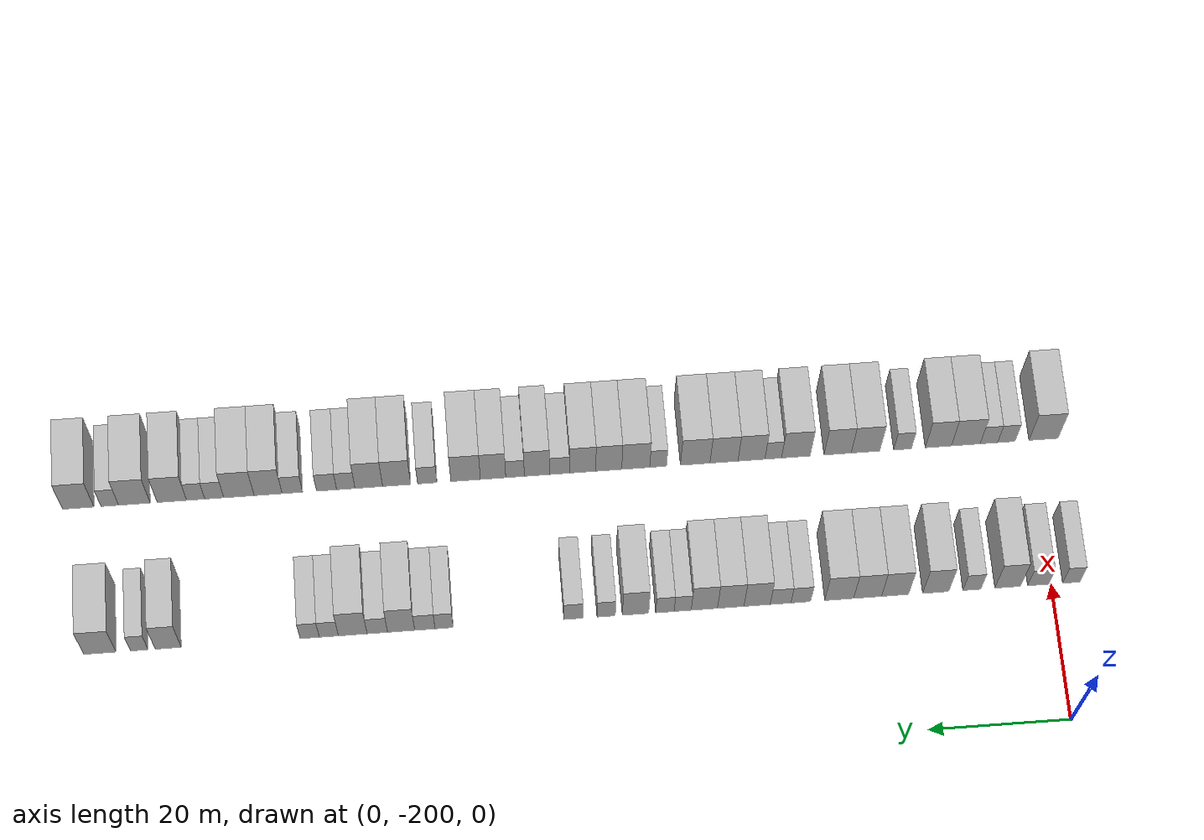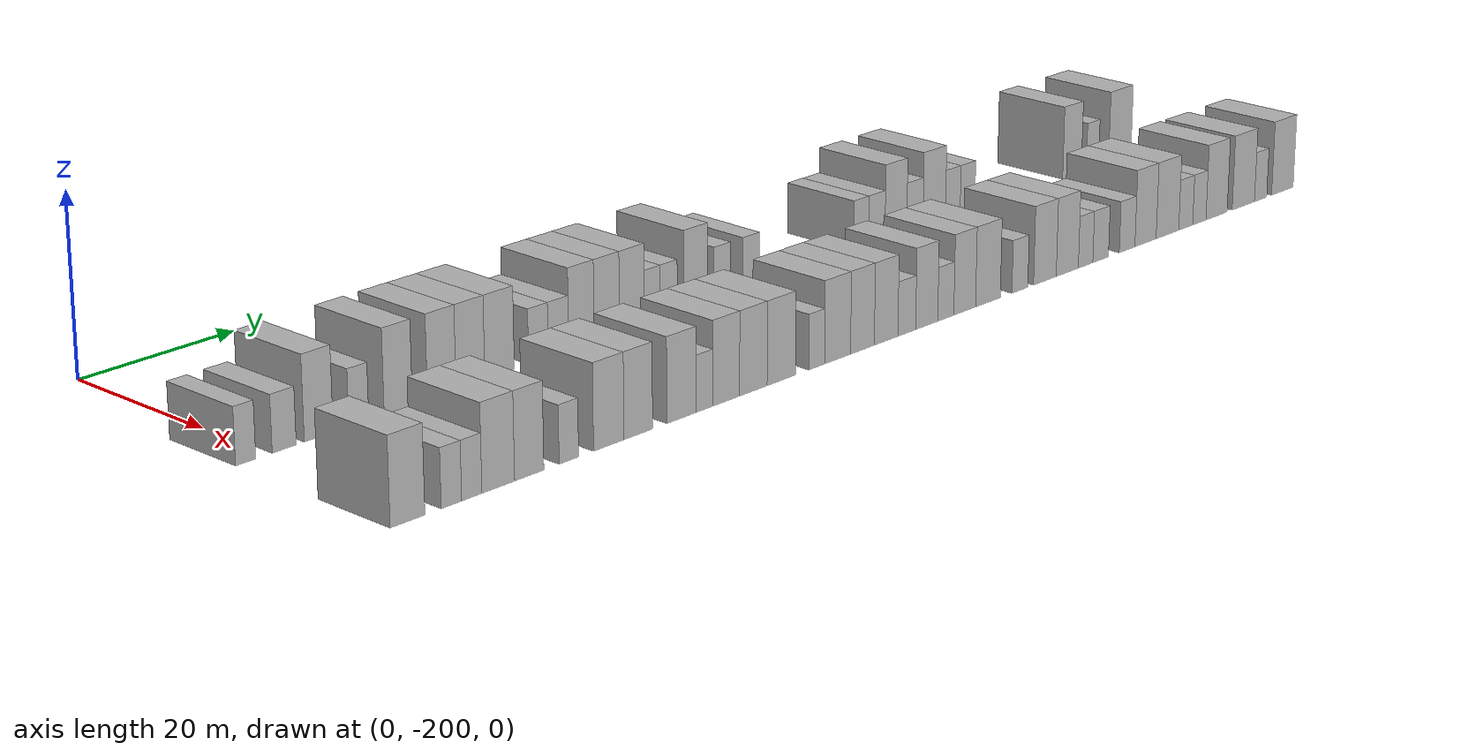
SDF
<sdf version="1.6">
 <world name="default">
  <model name="building_1">
   <static>1</static>
   <pose>25.0000 -202.7742 0 0.000000 0.000000 0.000000</pose>
   <link name="link">
    <pose>0 0 3.00 0 0 0</pose>
    <collision name="collision"><geometry><box><size>10.0000 2.4517 6.0000</size></box></geometry></collision>
    <visual name="visual">
     <cast_shadows>0</cast_shadows>
     <geometry><box><size>10.0000 2.4517 6.0000</size></box></geometry>
     <material>
      <script>
       <uri>model://HANNAS_wall/materials/scripts</uri>
       <uri>model://HANNAS_wall/materials/textures</uri>
       <name>vrc/HANNAS_wall</name>
      </script>
     </material>
    </visual>
   </link>
  </model>
  <model name="building_2">
   <static>1</static>
   <pose>25.0000 -198.0626 0 0.000000 0.000000 0.000000</pose>
   <link name="link">
    <pose>0 0 3.00 0 0 0</pose>
    <collision name="collision"><geometry><box><size>10.0000 2.9713 6.0000</size></box></geometry></collision>
    <visual name="visual">
     <cast_shadows>0</cast_shadows>
     <geometry><box><size>10.0000 2.9713 6.0000</size></box></geometry>
     <material>
      <script>
       <uri>model://HANNAS_wall/materials/scripts</uri>
       <uri>model://HANNAS_wall/materials/textures</uri>
       <name>vrc/HANNAS_wall</name>
      </script>
     </material>
    </visual>
   </link>
  </model>
  <model name="building_3">
   <static>1</static>
   <pose>25.0000 -193.7579 0 0.000000 0.000000 0.000000</pose>
   <link name="link">
    <pose>0 0 4.50 0 0 0</pose>
    <collision name="collision"><geometry><box><size>10.0000 3.6382 9.0000</size></box></geometry></collision>
    <visual name="visual">
     <cast_shadows>0</cast_shadows>
     <geometry><box><size>10.0000 3.6382 9.0000</size></box></geometry>
     <material>
      <script>
       <uri>model://HANNAS_wall/materials/scripts</uri>
       <uri>model://HANNAS_wall/materials/textures</uri>
       <name>vrc/HANNAS_wall</name>
      </script>
     </material>
    </visual>
   </link>
  </model>
  <model name="building_4">
   <static>1</static>
   <pose>25.0000 -188.6675 0 0.000000 0.000000 0.000000</pose>
   <link name="link">
    <pose>0 0 3.00 0 0 0</pose>
    <collision name="collision"><geometry><box><size>10.0000 2.5426 6.0000</size></box></geometry></collision>
    <visual name="visual">
     <cast_shadows>0</cast_shadows>
     <geometry><box><size>10.0000 2.5426 6.0000</size></box></geometry>
     <material>
      <script>
       <uri>model://HANNAS_wall/materials/scripts</uri>
       <uri>model://HANNAS_wall/materials/textures</uri>
       <name>vrc/HANNAS_wall</name>
      </script>
     </material>
    </visual>
   </link>
  </model>
  <model name="building_5">
   <static>1</static>
   <pose>25.0000 -183.5469 0 0.000000 0.000000 0.000000</pose>
   <link name="link">
    <pose>0 0 4.50 0 0 0</pose>
    <collision name="collision"><geometry><box><size>10.0000 3.6987 9.0000</size></box></geometry></collision>
    <visual name="visual">
     <cast_shadows>0</cast_shadows>
     <geometry><box><size>10.0000 3.6987 9.0000</size></box></geometry>
     <material>
      <script>
       <uri>model://HANNAS_wall/materials/scripts</uri>
       <uri>model://HANNAS_wall/materials/textures</uri>
       <name>vrc/HANNAS_wall</name>
      </script>
     </material>
    </visual>
   </link>
  </model>
  <model name="building_6">
   <static>1</static>
   <pose>25.0000 -177.7807 0 0.000000 0.000000 0.000000</pose>
   <link name="link">
    <pose>0 0 4.50 0 0 0</pose>
    <collision name="collision"><geometry><box><size>10.0000 3.8337 9.0000</size></box></geometry></collision>
    <visual name="visual">
     <cast_shadows>0</cast_shadows>
     <geometry><box><size>10.0000 3.8337 9.0000</size></box></geometry>
     <material>
      <script>
       <uri>model://HANNAS_wall/materials/scripts</uri>
       <uri>model://HANNAS_wall/materials/textures</uri>
       <name>vrc/HANNAS_wall</name>
      </script>
     </material>
    </visual>
   </link>
  </model>
  <model name="building_7">
   <static>1</static>
   <pose>25.0000 -173.8962 0 0.000000 0.000000 0.000000</pose>
   <link name="link">
    <pose>0 0 4.50 0 0 0</pose>
    <collision name="collision"><geometry><box><size>10.0000 3.9352 9.0000</size></box></geometry></collision>
    <visual name="visual">
     <cast_shadows>0</cast_shadows>
     <geometry><box><size>10.0000 3.9352 9.0000</size></box></geometry>
     <material>
      <script>
       <uri>model://HANNAS_wall/materials/scripts</uri>
       <uri>model://HANNAS_wall/materials/textures</uri>
       <name>vrc/HANNAS_wall</name>
      </script>
     </material>
    </visual>
   </link>
  </model>
  <model name="building_8">
   <static>1</static>
   <pose>25.0000 -169.8892 0 0.000000 0.000000 0.000000</pose>
   <link name="link">
    <pose>0 0 4.50 0 0 0</pose>
    <collision name="collision"><geometry><box><size>10.0000 4.0788 9.0000</size></box></geometry></collision>
    <visual name="visual">
     <cast_shadows>0</cast_shadows>
     <geometry><box><size>10.0000 4.0788 9.0000</size></box></geometry>
     <material>
      <script>
       <uri>model://HANNAS_wall/materials/scripts</uri>
       <uri>model://HANNAS_wall/materials/textures</uri>
       <name>vrc/HANNAS_wall</name>
      </script>
     </material>
    </visual>
   </link>
  </model>
  <model name="building_9">
   <static>1</static>
   <pose>25.0000 -164.4599 0 0.000000 0.000000 0.000000</pose>
   <link name="link">
    <pose>0 0 3.00 0 0 0</pose>
    <collision name="collision"><geometry><box><size>10.0000 2.7798 6.0000</size></box></geometry></collision>
    <visual name="visual">
     <cast_shadows>0</cast_shadows>
     <geometry><box><size>10.0000 2.7798 6.0000</size></box></geometry>
     <material>
      <script>
       <uri>model://HANNAS_wall/materials/scripts</uri>
       <uri>model://HANNAS_wall/materials/textures</uri>
       <name>vrc/HANNAS_wall</name>
      </script>
     </material>
    </visual>
   </link>
  </model>
  <model name="building_10">
   <static>1</static>
   <pose>25.0000 -161.5999 0 0.000000 0.000000 0.000000</pose>
   <link name="link">
    <pose>0 0 3.00 0 0 0</pose>
    <collision name="collision"><geometry><box><size>10.0000 2.9401 6.0000</size></box></geometry></collision>
    <visual name="visual">
     <cast_shadows>0</cast_shadows>
     <geometry><box><size>10.0000 2.9401 6.0000</size></box></geometry>
     <material>
      <script>
       <uri>model://HANNAS_wall/materials/scripts</uri>
       <uri>model://HANNAS_wall/materials/textures</uri>
       <name>vrc/HANNAS_wall</name>
      </script>
     </material>
    </visual>
   </link>
  </model>
  <model name="building_11">
   <static>1</static>
   <pose>25.0000 -158.2807 0 0.000000 0.000000 0.000000</pose>
   <link name="link">
    <pose>0 0 4.50 0 0 0</pose>
    <collision name="collision"><geometry><box><size>10.0000 3.6983 9.0000</size></box></geometry></collision>
    <visual name="visual">
     <cast_shadows>0</cast_shadows>
     <geometry><box><size>10.0000 3.6983 9.0000</size></box></geometry>
     <material>
      <script>
       <uri>model://HANNAS_wall/materials/scripts</uri>
       <uri>model://HANNAS_wall/materials/textures</uri>
       <name>vrc/HANNAS_wall</name>
      </script>
     </material>
    </visual>
   </link>
  </model>
  <model name="building_12">
   <static>1</static>
   <pose>25.0000 -154.5642 0 0.000000 0.000000 0.000000</pose>
   <link name="link">
    <pose>0 0 4.50 0 0 0</pose>
    <collision name="collision"><geometry><box><size>10.0000 3.7347 9.0000</size></box></geometry></collision>
    <visual name="visual">
     <cast_shadows>0</cast_shadows>
     <geometry><box><size>10.0000 3.7347 9.0000</size></box></geometry>
     <material>
      <script>
       <uri>model://HANNAS_wall/materials/scripts</uri>
       <uri>model://HANNAS_wall/materials/textures</uri>
       <name>vrc/HANNAS_wall</name>
      </script>
     </material>
    </visual>
   </link>
  </model>
  <model name="building_13">
   <static>1</static>
   <pose>25.0000 -150.8454 0 0.000000 0.000000 0.000000</pose>
   <link name="link">
    <pose>0 0 4.50 0 0 0</pose>
    <collision name="collision"><geometry><box><size>10.0000 3.7028 9.0000</size></box></geometry></collision>
    <visual name="visual">
     <cast_shadows>0</cast_shadows>
     <geometry><box><size>10.0000 3.7028 9.0000</size></box></geometry>
     <material>
      <script>
       <uri>model://HANNAS_wall/materials/scripts</uri>
       <uri>model://HANNAS_wall/materials/textures</uri>
       <name>vrc/HANNAS_wall</name>
      </script>
     </material>
    </visual>
   </link>
  </model>
  <model name="building_14">
   <static>1</static>
   <pose>25.0000 -147.7914 0 0.000000 0.000000 0.000000</pose>
   <link name="link">
    <pose>0 0 3.00 0 0 0</pose>
    <collision name="collision"><geometry><box><size>10.0000 2.4053 6.0000</size></box></geometry></collision>
    <visual name="visual">
     <cast_shadows>0</cast_shadows>
     <geometry><box><size>10.0000 2.4053 6.0000</size></box></geometry>
     <material>
      <script>
       <uri>model://HANNAS_wall/materials/scripts</uri>
       <uri>model://HANNAS_wall/materials/textures</uri>
       <name>vrc/HANNAS_wall</name>
      </script>
     </material>
    </visual>
   </link>
  </model>
  <model name="building_15">
   <static>1</static>
   <pose>25.0000 -145.2952 0 0.000000 0.000000 0.000000</pose>
   <link name="link">
    <pose>0 0 3.00 0 0 0</pose>
    <collision name="collision"><geometry><box><size>10.0000 2.5870 6.0000</size></box></geometry></collision>
    <visual name="visual">
     <cast_shadows>0</cast_shadows>
     <geometry><box><size>10.0000 2.5870 6.0000</size></box></geometry>
     <material>
      <script>
       <uri>model://HANNAS_wall/materials/scripts</uri>
       <uri>model://HANNAS_wall/materials/textures</uri>
       <name>vrc/HANNAS_wall</name>
      </script>
     </material>
    </visual>
   </link>
  </model>
  <model name="building_16">
   <static>1</static>
   <pose>25.0000 -141.1525 0 0.000000 0.000000 0.000000</pose>
   <link name="link">
    <pose>0 0 4.50 0 0 0</pose>
    <collision name="collision"><geometry><box><size>10.0000 3.6984 9.0000</size></box></geometry></collision>
    <visual name="visual">
     <cast_shadows>0</cast_shadows>
     <geometry><box><size>10.0000 3.6984 9.0000</size></box></geometry>
     <material>
      <script>
       <uri>model://HANNAS_wall/materials/scripts</uri>
       <uri>model://HANNAS_wall/materials/textures</uri>
       <name>vrc/HANNAS_wall</name>
      </script>
     </material>
    </visual>
   </link>
  </model>
  <model name="building_17">
   <static>1</static>
   <pose>25.0000 -137.0269 0 0.000000 0.000000 0.000000</pose>
   <link name="link">
    <pose>0 0 3.00 0 0 0</pose>
    <collision name="collision"><geometry><box><size>10.0000 2.5526 6.0000</size></box></geometry></collision>
    <visual name="visual">
     <cast_shadows>0</cast_shadows>
     <geometry><box><size>10.0000 2.5526 6.0000</size></box></geometry>
     <material>
      <script>
       <uri>model://HANNAS_wall/materials/scripts</uri>
       <uri>model://HANNAS_wall/materials/textures</uri>
       <name>vrc/HANNAS_wall</name>
      </script>
     </material>
    </visual>
   </link>
  </model>
  <model name="building_18">
   <static>1</static>
   <pose>25.0000 -132.4183 0 0.000000 0.000000 0.000000</pose>
   <link name="link">
    <pose>0 0 3.00 0 0 0</pose>
    <collision name="collision"><geometry><box><size>10.0000 2.6648 6.0000</size></box></geometry></collision>
    <visual name="visual">
     <cast_shadows>0</cast_shadows>
     <geometry><box><size>10.0000 2.6648 6.0000</size></box></geometry>
     <material>
      <script>
       <uri>model://HANNAS_wall/materials/scripts</uri>
       <uri>model://HANNAS_wall/materials/textures</uri>
       <name>vrc/HANNAS_wall</name>
      </script>
     </material>
    </visual>
   </link>
  </model>
  <model name="building_19">
   <static>1</static>
   <pose>25.0000 -114.2712 0 0.000000 0.000000 0.000000</pose>
   <link name="link">
    <pose>0 0 3.00 0 0 0</pose>
    <collision name="collision"><geometry><box><size>10.0000 2.5431 6.0000</size></box></geometry></collision>
    <visual name="visual">
     <cast_shadows>0</cast_shadows>
     <geometry><box><size>10.0000 2.5431 6.0000</size></box></geometry>
     <material>
      <script>
       <uri>model://HANNAS_wall/materials/scripts</uri>
       <uri>model://HANNAS_wall/materials/textures</uri>
       <name>vrc/HANNAS_wall</name>
      </script>
     </material>
    </visual>
   </link>
  </model>
  <model name="building_20">
   <static>1</static>
   <pose>25.0000 -111.5728 0 0.000000 0.000000 0.000000</pose>
   <link name="link">
    <pose>0 0 3.00 0 0 0</pose>
    <collision name="collision"><geometry><box><size>10.0000 2.8536 6.0000</size></box></geometry></collision>
    <visual name="visual">
     <cast_shadows>0</cast_shadows>
     <geometry><box><size>10.0000 2.8536 6.0000</size></box></geometry>
     <material>
      <script>
       <uri>model://HANNAS_wall/materials/scripts</uri>
       <uri>model://HANNAS_wall/materials/textures</uri>
       <name>vrc/HANNAS_wall</name>
      </script>
     </material>
    </visual>
   </link>
  </model>
  <model name="building_21">
   <static>1</static>
   <pose>25.0000 -108.2441 0 0.000000 0.000000 0.000000</pose>
   <link name="link">
    <pose>0 0 4.50 0 0 0</pose>
    <collision name="collision"><geometry><box><size>10.0000 3.8039 9.0000</size></box></geometry></collision>
    <visual name="visual">
     <cast_shadows>0</cast_shadows>
     <geometry><box><size>10.0000 3.8039 9.0000</size></box></geometry>
     <material>
      <script>
       <uri>model://HANNAS_wall/materials/scripts</uri>
       <uri>model://HANNAS_wall/materials/textures</uri>
       <name>vrc/HANNAS_wall</name>
      </script>
     </material>
    </visual>
   </link>
  </model>
  <model name="building_22">
   <static>1</static>
   <pose>25.0000 -104.9059 0 0.000000 0.000000 0.000000</pose>
   <link name="link">
    <pose>0 0 3.00 0 0 0</pose>
    <collision name="collision"><geometry><box><size>10.0000 2.8725 6.0000</size></box></geometry></collision>
    <visual name="visual">
     <cast_shadows>0</cast_shadows>
     <geometry><box><size>10.0000 2.8725 6.0000</size></box></geometry>
     <material>
      <script>
       <uri>model://HANNAS_wall/materials/scripts</uri>
       <uri>model://HANNAS_wall/materials/textures</uri>
       <name>vrc/HANNAS_wall</name>
      </script>
     </material>
    </visual>
   </link>
  </model>
  <model name="building_23">
   <static>1</static>
   <pose>25.0000 -101.4643 0 0.000000 0.000000 0.000000</pose>
   <link name="link">
    <pose>0 0 4.50 0 0 0</pose>
    <collision name="collision"><geometry><box><size>10.0000 4.0108 9.0000</size></box></geometry></collision>
    <visual name="visual">
     <cast_shadows>0</cast_shadows>
     <geometry><box><size>10.0000 4.0108 9.0000</size></box></geometry>
     <material>
      <script>
       <uri>model://HANNAS_wall/materials/scripts</uri>
       <uri>model://HANNAS_wall/materials/textures</uri>
       <name>vrc/HANNAS_wall</name>
      </script>
     </material>
    </visual>
   </link>
  </model>
  <model name="building_24">
   <static>1</static>
   <pose>25.0000 -98.1248 0 0.000000 0.000000 0.000000</pose>
   <link name="link">
    <pose>0 0 3.00 0 0 0</pose>
    <collision name="collision"><geometry><box><size>10.0000 2.6683 6.0000</size></box></geometry></collision>
    <visual name="visual">
     <cast_shadows>0</cast_shadows>
     <geometry><box><size>10.0000 2.6683 6.0000</size></box></geometry>
     <material>
      <script>
       <uri>model://HANNAS_wall/materials/scripts</uri>
       <uri>model://HANNAS_wall/materials/textures</uri>
       <name>vrc/HANNAS_wall</name>
      </script>
     </material>
    </visual>
   </link>
  </model>
  <model name="building_25">
   <static>1</static>
   <pose>25.0000 -95.4521 0 0.000000 0.000000 0.000000</pose>
   <link name="link">
    <pose>0 0 3.00 0 0 0</pose>
    <collision name="collision"><geometry><box><size>10.0000 2.6770 6.0000</size></box></geometry></collision>
    <visual name="visual">
     <cast_shadows>0</cast_shadows>
     <geometry><box><size>10.0000 2.6770 6.0000</size></box></geometry>
     <material>
      <script>
       <uri>model://HANNAS_wall/materials/scripts</uri>
       <uri>model://HANNAS_wall/materials/textures</uri>
       <name>vrc/HANNAS_wall</name>
      </script>
     </material>
    </visual>
   </link>
  </model>
  <model name="building_26">
   <static>1</static>
   <pose>25.0000 -75.6816 0 0.000000 0.000000 0.000000</pose>
   <link name="link">
    <pose>0 0 4.50 0 0 0</pose>
    <collision name="collision"><geometry><box><size>10.0000 3.6213 9.0000</size></box></geometry></collision>
    <visual name="visual">
     <cast_shadows>0</cast_shadows>
     <geometry><box><size>10.0000 3.6213 9.0000</size></box></geometry>
     <material>
      <script>
       <uri>model://HANNAS_wall/materials/scripts</uri>
       <uri>model://HANNAS_wall/materials/textures</uri>
       <name>vrc/HANNAS_wall</name>
      </script>
     </material>
    </visual>
   </link>
  </model>
  <model name="building_27">
   <static>1</static>
   <pose>25.0000 -71.6547 0 0.000000 0.000000 0.000000</pose>
   <link name="link">
    <pose>0 0 3.00 0 0 0</pose>
    <collision name="collision"><geometry><box><size>10.0000 2.4325 6.0000</size></box></geometry></collision>
    <visual name="visual">
     <cast_shadows>0</cast_shadows>
     <geometry><box><size>10.0000 2.4325 6.0000</size></box></geometry>
     <material>
      <script>
       <uri>model://HANNAS_wall/materials/scripts</uri>
       <uri>model://HANNAS_wall/materials/textures</uri>
       <name>vrc/HANNAS_wall</name>
      </script>
     </material>
    </visual>
   </link>
  </model>
  <model name="building_28">
   <static>1</static>
   <pose>25.0000 -66.1913 0 0.000000 0.000000 0.000000</pose>
   <link name="link">
    <pose>0 0 4.50 0 0 0</pose>
    <collision name="collision"><geometry><box><size>10.0000 4.4942 9.0000</size></box></geometry></collision>
    <visual name="visual">
     <cast_shadows>0</cast_shadows>
     <geometry><box><size>10.0000 4.4942 9.0000</size></box></geometry>
     <material>
      <script>
       <uri>model://HANNAS_wall/materials/scripts</uri>
       <uri>model://HANNAS_wall/materials/textures</uri>
       <name>vrc/HANNAS_wall</name>
      </script>
     </material>
    </visual>
   </link>
  </model>
  <model name="building_87">
   <static>1</static>
   <pose>47.0000 -201.8964 0 0.000000 0.000000 0.000000</pose>
   <link name="link">
    <pose>0 0 4.50 0 0 0</pose>
    <collision name="collision"><geometry><box><size>10.0000 4.2072 9.0000</size></box></geometry></collision>
    <visual name="visual">
     <cast_shadows>0</cast_shadows>
     <geometry><box><size>10.0000 4.2072 9.0000</size></box></geometry>
     <material>
      <script>
       <uri>model://HANNAS_wall/materials/scripts</uri>
       <uri>model://HANNAS_wall/materials/textures</uri>
       <name>vrc/HANNAS_wall</name>
      </script>
     </material>
    </visual>
   </link>
  </model>
  <model name="building_88">
   <static>1</static>
   <pose>47.0000 -196.5256 0 0.000000 0.000000 0.000000</pose>
   <link name="link">
    <pose>0 0 3.00 0 0 0</pose>
    <collision name="collision"><geometry><box><size>10.0000 2.5345 6.0000</size></box></geometry></collision>
    <visual name="visual">
     <cast_shadows>0</cast_shadows>
     <geometry><box><size>10.0000 2.5345 6.0000</size></box></geometry>
     <material>
      <script>
       <uri>model://HANNAS_wall/materials/scripts</uri>
       <uri>model://HANNAS_wall/materials/textures</uri>
       <name>vrc/HANNAS_wall</name>
      </script>
     </material>
    </visual>
   </link>
  </model>
  <model name="building_89">
   <static>1</static>
   <pose>47.0000 -193.9909 0 0.000000 0.000000 0.000000</pose>
   <link name="link">
    <pose>0 0 3.00 0 0 0</pose>
    <collision name="collision"><geometry><box><size>10.0000 2.5350 6.0000</size></box></geometry></collision>
    <visual name="visual">
     <cast_shadows>0</cast_shadows>
     <geometry><box><size>10.0000 2.5350 6.0000</size></box></geometry>
     <material>
      <script>
       <uri>model://HANNAS_wall/materials/scripts</uri>
       <uri>model://HANNAS_wall/materials/textures</uri>
       <name>vrc/HANNAS_wall</name>
      </script>
     </material>
    </visual>
   </link>
  </model>
  <model name="building_90">
   <static>1</static>
   <pose>47.0000 -190.6429 0 0.000000 0.000000 0.000000</pose>
   <link name="link">
    <pose>0 0 4.50 0 0 0</pose>
    <collision name="collision"><geometry><box><size>10.0000 4.1609 9.0000</size></box></geometry></collision>
    <visual name="visual">
     <cast_shadows>0</cast_shadows>
     <geometry><box><size>10.0000 4.1609 9.0000</size></box></geometry>
     <material>
      <script>
       <uri>model://HANNAS_wall/materials/scripts</uri>
       <uri>model://HANNAS_wall/materials/textures</uri>
       <name>vrc/HANNAS_wall</name>
      </script>
     </material>
    </visual>
   </link>
  </model>
  <model name="building_91">
   <static>1</static>
   <pose>47.0000 -186.6748 0 0.000000 0.000000 0.000000</pose>
   <link name="link">
    <pose>0 0 4.50 0 0 0</pose>
    <collision name="collision"><geometry><box><size>10.0000 3.7754 9.0000</size></box></geometry></collision>
    <visual name="visual">
     <cast_shadows>0</cast_shadows>
     <geometry><box><size>10.0000 3.7754 9.0000</size></box></geometry>
     <material>
      <script>
       <uri>model://HANNAS_wall/materials/scripts</uri>
       <uri>model://HANNAS_wall/materials/textures</uri>
       <name>vrc/HANNAS_wall</name>
      </script>
     </material>
    </visual>
   </link>
  </model>
  <model name="building_92">
   <static>1</static>
   <pose>47.0000 -181.5037 0 0.000000 0.000000 0.000000</pose>
   <link name="link">
    <pose>0 0 3.00 0 0 0</pose>
    <collision name="collision"><geometry><box><size>10.0000 2.5666 6.0000</size></box></geometry></collision>
    <visual name="visual">
     <cast_shadows>0</cast_shadows>
     <geometry><box><size>10.0000 2.5666 6.0000</size></box></geometry>
     <material>
      <script>
       <uri>model://HANNAS_wall/materials/scripts</uri>
       <uri>model://HANNAS_wall/materials/textures</uri>
       <name>vrc/HANNAS_wall</name>
      </script>
     </material>
    </visual>
   </link>
  </model>
  <model name="building_93">
   <static>1</static>
   <pose>47.0000 -176.1572 0 0.000000 0.000000 0.000000</pose>
   <link name="link">
    <pose>0 0 4.50 0 0 0</pose>
    <collision name="collision"><geometry><box><size>10.0000 4.1265 9.0000</size></box></geometry></collision>
    <visual name="visual">
     <cast_shadows>0</cast_shadows>
     <geometry><box><size>10.0000 4.1265 9.0000</size></box></geometry>
     <material>
      <script>
       <uri>model://HANNAS_wall/materials/scripts</uri>
       <uri>model://HANNAS_wall/materials/textures</uri>
       <name>vrc/HANNAS_wall</name>
      </script>
     </material>
    </visual>
   </link>
  </model>
  <model name="building_94">
   <static>1</static>
   <pose>47.0000 -172.1310 0 0.000000 0.000000 0.000000</pose>
   <link name="link">
    <pose>0 0 4.50 0 0 0</pose>
    <collision name="collision"><geometry><box><size>10.0000 3.9259 9.0000</size></box></geometry></collision>
    <visual name="visual">
     <cast_shadows>0</cast_shadows>
     <geometry><box><size>10.0000 3.9259 9.0000</size></box></geometry>
     <material>
      <script>
       <uri>model://HANNAS_wall/materials/scripts</uri>
       <uri>model://HANNAS_wall/materials/textures</uri>
       <name>vrc/HANNAS_wall</name>
      </script>
     </material>
    </visual>
   </link>
  </model>
  <model name="building_95">
   <static>1</static>
   <pose>47.0000 -166.1115 0 0.000000 0.000000 0.000000</pose>
   <link name="link">
    <pose>0 0 4.50 0 0 0</pose>
    <collision name="collision"><geometry><box><size>10.0000 4.1133 9.0000</size></box></geometry></collision>
    <visual name="visual">
     <cast_shadows>0</cast_shadows>
     <geometry><box><size>10.0000 4.1133 9.0000</size></box></geometry>
     <material>
      <script>
       <uri>model://HANNAS_wall/materials/scripts</uri>
       <uri>model://HANNAS_wall/materials/textures</uri>
       <name>vrc/HANNAS_wall</name>
      </script>
     </material>
    </visual>
   </link>
  </model>
  <model name="building_96">
   <static>1</static>
   <pose>47.0000 -162.8544 0 0.000000 0.000000 0.000000</pose>
   <link name="link">
    <pose>0 0 3.00 0 0 0</pose>
    <collision name="collision"><geometry><box><size>10.0000 2.4008 6.0000</size></box></geometry></collision>
    <visual name="visual">
     <cast_shadows>0</cast_shadows>
     <geometry><box><size>10.0000 2.4008 6.0000</size></box></geometry>
     <material>
      <script>
       <uri>model://HANNAS_wall/materials/scripts</uri>
       <uri>model://HANNAS_wall/materials/textures</uri>
       <name>vrc/HANNAS_wall</name>
      </script>
     </material>
    </visual>
   </link>
  </model>
  <model name="building_97">
   <static>1</static>
   <pose>47.0000 -159.7162 0 0.000000 0.000000 0.000000</pose>
   <link name="link">
    <pose>0 0 4.50 0 0 0</pose>
    <collision name="collision"><geometry><box><size>10.0000 3.8755 9.0000</size></box></geometry></collision>
    <visual name="visual">
     <cast_shadows>0</cast_shadows>
     <geometry><box><size>10.0000 3.8755 9.0000</size></box></geometry>
     <material>
      <script>
       <uri>model://HANNAS_wall/materials/scripts</uri>
       <uri>model://HANNAS_wall/materials/textures</uri>
       <name>vrc/HANNAS_wall</name>
      </script>
     </material>
    </visual>
   </link>
  </model>
  <model name="building_98">
   <static>1</static>
   <pose>47.0000 -155.7651 0 0.000000 0.000000 0.000000</pose>
   <link name="link">
    <pose>0 0 4.50 0 0 0</pose>
    <collision name="collision"><geometry><box><size>10.0000 4.0269 9.0000</size></box></geometry></collision>
    <visual name="visual">
     <cast_shadows>0</cast_shadows>
     <geometry><box><size>10.0000 4.0269 9.0000</size></box></geometry>
     <material>
      <script>
       <uri>model://HANNAS_wall/materials/scripts</uri>
       <uri>model://HANNAS_wall/materials/textures</uri>
       <name>vrc/HANNAS_wall</name>
      </script>
     </material>
    </visual>
   </link>
  </model>
  <model name="building_99">
   <static>1</static>
   <pose>47.0000 -151.6254 0 0.000000 0.000000 0.000000</pose>
   <link name="link">
    <pose>0 0 4.50 0 0 0</pose>
    <collision name="collision"><geometry><box><size>10.0000 4.2524 9.0000</size></box></geometry></collision>
    <visual name="visual">
     <cast_shadows>0</cast_shadows>
     <geometry><box><size>10.0000 4.2524 9.0000</size></box></geometry>
     <material>
      <script>
       <uri>model://HANNAS_wall/materials/scripts</uri>
       <uri>model://HANNAS_wall/materials/textures</uri>
       <name>vrc/HANNAS_wall</name>
      </script>
     </material>
    </visual>
   </link>
  </model>
  <model name="building_100">
   <static>1</static>
   <pose>47.0000 -146.2927 0 0.000000 0.000000 0.000000</pose>
   <link name="link">
    <pose>0 0 3.00 0 0 0</pose>
    <collision name="collision"><geometry><box><size>10.0000 2.4131 6.0000</size></box></geometry></collision>
    <visual name="visual">
     <cast_shadows>0</cast_shadows>
     <geometry><box><size>10.0000 2.4131 6.0000</size></box></geometry>
     <material>
      <script>
       <uri>model://HANNAS_wall/materials/scripts</uri>
       <uri>model://HANNAS_wall/materials/textures</uri>
       <name>vrc/HANNAS_wall</name>
      </script>
     </material>
    </visual>
   </link>
  </model>
  <model name="building_101">
   <static>1</static>
   <pose>47.0000 -143.0731 0 0.000000 0.000000 0.000000</pose>
   <link name="link">
    <pose>0 0 4.50 0 0 0</pose>
    <collision name="collision"><geometry><box><size>10.0000 4.0261 9.0000</size></box></geometry></collision>
    <visual name="visual">
     <cast_shadows>0</cast_shadows>
     <geometry><box><size>10.0000 4.0261 9.0000</size></box></geometry>
     <material>
      <script>
       <uri>model://HANNAS_wall/materials/scripts</uri>
       <uri>model://HANNAS_wall/materials/textures</uri>
       <name>vrc/HANNAS_wall</name>
      </script>
     </material>
    </visual>
   </link>
  </model>
  <model name="building_102">
   <static>1</static>
   <pose>47.0000 -139.1915 0 0.000000 0.000000 0.000000</pose>
   <link name="link">
    <pose>0 0 4.50 0 0 0</pose>
    <collision name="collision"><geometry><box><size>10.0000 3.7372 9.0000</size></box></geometry></collision>
    <visual name="visual">
     <cast_shadows>0</cast_shadows>
     <geometry><box><size>10.0000 3.7372 9.0000</size></box></geometry>
     <material>
      <script>
       <uri>model://HANNAS_wall/materials/scripts</uri>
       <uri>model://HANNAS_wall/materials/textures</uri>
       <name>vrc/HANNAS_wall</name>
      </script>
     </material>
    </visual>
   </link>
  </model>
  <model name="building_103">
   <static>1</static>
   <pose>47.0000 -135.4441 0 0.000000 0.000000 0.000000</pose>
   <link name="link">
    <pose>0 0 4.50 0 0 0</pose>
    <collision name="collision"><geometry><box><size>10.0000 3.7575 9.0000</size></box></geometry></collision>
    <visual name="visual">
     <cast_shadows>0</cast_shadows>
     <geometry><box><size>10.0000 3.7575 9.0000</size></box></geometry>
     <material>
      <script>
       <uri>model://HANNAS_wall/materials/scripts</uri>
       <uri>model://HANNAS_wall/materials/textures</uri>
       <name>vrc/HANNAS_wall</name>
      </script>
     </material>
    </visual>
   </link>
  </model>
  <model name="building_104">
   <static>1</static>
   <pose>47.0000 -132.1372 0 0.000000 0.000000 0.000000</pose>
   <link name="link">
    <pose>0 0 3.00 0 0 0</pose>
    <collision name="collision"><geometry><box><size>10.0000 2.8563 6.0000</size></box></geometry></collision>
    <visual name="visual">
     <cast_shadows>0</cast_shadows>
     <geometry><box><size>10.0000 2.8563 6.0000</size></box></geometry>
     <material>
      <script>
       <uri>model://HANNAS_wall/materials/scripts</uri>
       <uri>model://HANNAS_wall/materials/textures</uri>
       <name>vrc/HANNAS_wall</name>
      </script>
     </material>
    </visual>
   </link>
  </model>
  <model name="building_105">
   <static>1</static>
   <pose>47.0000 -128.9010 0 0.000000 0.000000 0.000000</pose>
   <link name="link">
    <pose>0 0 4.50 0 0 0</pose>
    <collision name="collision"><geometry><box><size>10.0000 3.6161 9.0000</size></box></geometry></collision>
    <visual name="visual">
     <cast_shadows>0</cast_shadows>
     <geometry><box><size>10.0000 3.6161 9.0000</size></box></geometry>
     <material>
      <script>
       <uri>model://HANNAS_wall/materials/scripts</uri>
       <uri>model://HANNAS_wall/materials/textures</uri>
       <name>vrc/HANNAS_wall</name>
      </script>
     </material>
    </visual>
   </link>
  </model>
  <model name="building_106">
   <static>1</static>
   <pose>47.0000 -125.7627 0 0.000000 0.000000 0.000000</pose>
   <link name="link">
    <pose>0 0 3.00 0 0 0</pose>
    <collision name="collision"><geometry><box><size>10.0000 2.6606 6.0000</size></box></geometry></collision>
    <visual name="visual">
     <cast_shadows>0</cast_shadows>
     <geometry><box><size>10.0000 2.6606 6.0000</size></box></geometry>
     <material>
      <script>
       <uri>model://HANNAS_wall/materials/scripts</uri>
       <uri>model://HANNAS_wall/materials/textures</uri>
       <name>vrc/HANNAS_wall</name>
      </script>
     </material>
    </visual>
   </link>
  </model>
  <model name="building_107">
   <static>1</static>
   <pose>47.0000 -122.6169 0 0.000000 0.000000 0.000000</pose>
   <link name="link">
    <pose>0 0 4.50 0 0 0</pose>
    <collision name="collision"><geometry><box><size>10.0000 3.6309 9.0000</size></box></geometry></collision>
    <visual name="visual">
     <cast_shadows>0</cast_shadows>
     <geometry><box><size>10.0000 3.6309 9.0000</size></box></geometry>
     <material>
      <script>
       <uri>model://HANNAS_wall/materials/scripts</uri>
       <uri>model://HANNAS_wall/materials/textures</uri>
       <name>vrc/HANNAS_wall</name>
      </script>
     </material>
    </visual>
   </link>
  </model>
  <model name="building_108">
   <static>1</static>
   <pose>47.0000 -118.6958 0 0.000000 0.000000 0.000000</pose>
   <link name="link">
    <pose>0 0 4.50 0 0 0</pose>
    <collision name="collision"><geometry><box><size>10.0000 4.2112 9.0000</size></box></geometry></collision>
    <visual name="visual">
     <cast_shadows>0</cast_shadows>
     <geometry><box><size>10.0000 4.2112 9.0000</size></box></geometry>
     <material>
      <script>
       <uri>model://HANNAS_wall/materials/scripts</uri>
       <uri>model://HANNAS_wall/materials/textures</uri>
       <name>vrc/HANNAS_wall</name>
      </script>
     </material>
    </visual>
   </link>
  </model>
  <model name="building_109">
   <static>1</static>
   <pose>47.0000 -113.2084 0 0.000000 0.000000 0.000000</pose>
   <link name="link">
    <pose>0 0 3.00 0 0 0</pose>
    <collision name="collision"><geometry><box><size>10.0000 2.7637 6.0000</size></box></geometry></collision>
    <visual name="visual">
     <cast_shadows>0</cast_shadows>
     <geometry><box><size>10.0000 2.7637 6.0000</size></box></geometry>
     <material>
      <script>
       <uri>model://HANNAS_wall/materials/scripts</uri>
       <uri>model://HANNAS_wall/materials/textures</uri>
       <name>vrc/HANNAS_wall</name>
      </script>
     </material>
    </visual>
   </link>
  </model>
  <model name="building_110">
   <static>1</static>
   <pose>47.0000 -108.8260 0 0.000000 0.000000 0.000000</pose>
   <link name="link">
    <pose>0 0 4.50 0 0 0</pose>
    <collision name="collision"><geometry><box><size>10.0000 4.0009 9.0000</size></box></geometry></collision>
    <visual name="visual">
     <cast_shadows>0</cast_shadows>
     <geometry><box><size>10.0000 4.0009 9.0000</size></box></geometry>
     <material>
      <script>
       <uri>model://HANNAS_wall/materials/scripts</uri>
       <uri>model://HANNAS_wall/materials/textures</uri>
       <name>vrc/HANNAS_wall</name>
      </script>
     </material>
    </visual>
   </link>
  </model>
  <model name="building_111">
   <static>1</static>
   <pose>47.0000 -104.8471 0 0.000000 0.000000 0.000000</pose>
   <link name="link">
    <pose>0 0 4.50 0 0 0</pose>
    <collision name="collision"><geometry><box><size>10.0000 3.9571 9.0000</size></box></geometry></collision>
    <visual name="visual">
     <cast_shadows>0</cast_shadows>
     <geometry><box><size>10.0000 3.9571 9.0000</size></box></geometry>
     <material>
      <script>
       <uri>model://HANNAS_wall/materials/scripts</uri>
       <uri>model://HANNAS_wall/materials/textures</uri>
       <name>vrc/HANNAS_wall</name>
      </script>
     </material>
    </visual>
   </link>
  </model>
  <model name="building_112">
   <static>1</static>
   <pose>47.0000 -101.5576 0 0.000000 0.000000 0.000000</pose>
   <link name="link">
    <pose>0 0 3.00 0 0 0</pose>
    <collision name="collision"><geometry><box><size>10.0000 2.6218 6.0000</size></box></geometry></collision>
    <visual name="visual">
     <cast_shadows>0</cast_shadows>
     <geometry><box><size>10.0000 2.6218 6.0000</size></box></geometry>
     <material>
      <script>
       <uri>model://HANNAS_wall/materials/scripts</uri>
       <uri>model://HANNAS_wall/materials/textures</uri>
       <name>vrc/HANNAS_wall</name>
      </script>
     </material>
    </visual>
   </link>
  </model>
  <model name="building_113">
   <static>1</static>
   <pose>47.0000 -98.8159 0 0.000000 0.000000 0.000000</pose>
   <link name="link">
    <pose>0 0 3.00 0 0 0</pose>
    <collision name="collision"><geometry><box><size>10.0000 2.8615 6.0000</size></box></geometry></collision>
    <visual name="visual">
     <cast_shadows>0</cast_shadows>
     <geometry><box><size>10.0000 2.8615 6.0000</size></box></geometry>
     <material>
      <script>
       <uri>model://HANNAS_wall/materials/scripts</uri>
       <uri>model://HANNAS_wall/materials/textures</uri>
       <name>vrc/HANNAS_wall</name>
      </script>
     </material>
    </visual>
   </link>
  </model>
  <model name="building_114">
   <static>1</static>
   <pose>47.0000 -93.9337 0 0.000000 0.000000 0.000000</pose>
   <link name="link">
    <pose>0 0 3.00 0 0 0</pose>
    <collision name="collision"><geometry><box><size>10.0000 2.9030 6.0000</size></box></geometry></collision>
    <visual name="visual">
     <cast_shadows>0</cast_shadows>
     <geometry><box><size>10.0000 2.9030 6.0000</size></box></geometry>
     <material>
      <script>
       <uri>model://HANNAS_wall/materials/scripts</uri>
       <uri>model://HANNAS_wall/materials/textures</uri>
       <name>vrc/HANNAS_wall</name>
      </script>
     </material>
    </visual>
   </link>
  </model>
  <model name="building_115">
   <static>1</static>
   <pose>47.0000 -90.4831 0 0.000000 0.000000 0.000000</pose>
   <link name="link">
    <pose>0 0 4.50 0 0 0</pose>
    <collision name="collision"><geometry><box><size>10.0000 3.9983 9.0000</size></box></geometry></collision>
    <visual name="visual">
     <cast_shadows>0</cast_shadows>
     <geometry><box><size>10.0000 3.9983 9.0000</size></box></geometry>
     <material>
      <script>
       <uri>model://HANNAS_wall/materials/scripts</uri>
       <uri>model://HANNAS_wall/materials/textures</uri>
       <name>vrc/HANNAS_wall</name>
      </script>
     </material>
    </visual>
   </link>
  </model>
  <model name="building_116">
   <static>1</static>
   <pose>47.0000 -86.3221 0 0.000000 0.000000 0.000000</pose>
   <link name="link">
    <pose>0 0 4.50 0 0 0</pose>
    <collision name="collision"><geometry><box><size>10.0000 4.3236 9.0000</size></box></geometry></collision>
    <visual name="visual">
     <cast_shadows>0</cast_shadows>
     <geometry><box><size>10.0000 4.3236 9.0000</size></box></geometry>
     <material>
      <script>
       <uri>model://HANNAS_wall/materials/scripts</uri>
       <uri>model://HANNAS_wall/materials/textures</uri>
       <name>vrc/HANNAS_wall</name>
      </script>
     </material>
    </visual>
   </link>
  </model>
  <model name="building_117">
   <static>1</static>
   <pose>47.0000 -82.8091 0 0.000000 0.000000 0.000000</pose>
   <link name="link">
    <pose>0 0 3.00 0 0 0</pose>
    <collision name="collision"><geometry><box><size>10.0000 2.7023 6.0000</size></box></geometry></collision>
    <visual name="visual">
     <cast_shadows>0</cast_shadows>
     <geometry><box><size>10.0000 2.7023 6.0000</size></box></geometry>
     <material>
      <script>
       <uri>model://HANNAS_wall/materials/scripts</uri>
       <uri>model://HANNAS_wall/materials/textures</uri>
       <name>vrc/HANNAS_wall</name>
      </script>
     </material>
    </visual>
   </link>
  </model>
  <model name="building_118">
   <static>1</static>
   <pose>47.0000 -80.1593 0 0.000000 0.000000 0.000000</pose>
   <link name="link">
    <pose>0 0 3.00 0 0 0</pose>
    <collision name="collision"><geometry><box><size>10.0000 2.5973 6.0000</size></box></geometry></collision>
    <visual name="visual">
     <cast_shadows>0</cast_shadows>
     <geometry><box><size>10.0000 2.5973 6.0000</size></box></geometry>
     <material>
      <script>
       <uri>model://HANNAS_wall/materials/scripts</uri>
       <uri>model://HANNAS_wall/materials/textures</uri>
       <name>vrc/HANNAS_wall</name>
      </script>
     </material>
    </visual>
   </link>
  </model>
  <model name="building_119">
   <static>1</static>
   <pose>47.0000 -76.7648 0 0.000000 0.000000 0.000000</pose>
   <link name="link">
    <pose>0 0 4.50 0 0 0</pose>
    <collision name="collision"><geometry><box><size>10.0000 4.1915 9.0000</size></box></geometry></collision>
    <visual name="visual">
     <cast_shadows>0</cast_shadows>
     <geometry><box><size>10.0000 4.1915 9.0000</size></box></geometry>
     <material>
      <script>
       <uri>model://HANNAS_wall/materials/scripts</uri>
       <uri>model://HANNAS_wall/materials/textures</uri>
       <name>vrc/HANNAS_wall</name>
      </script>
     </material>
    </visual>
   </link>
  </model>
  <model name="building_120">
   <static>1</static>
   <pose>47.0000 -71.4220 0 0.000000 0.000000 0.000000</pose>
   <link name="link">
    <pose>0 0 4.50 0 0 0</pose>
    <collision name="collision"><geometry><box><size>10.0000 4.4941 9.0000</size></box></geometry></collision>
    <visual name="visual">
     <cast_shadows>0</cast_shadows>
     <geometry><box><size>10.0000 4.4941 9.0000</size></box></geometry>
     <material>
      <script>
       <uri>model://HANNAS_wall/materials/scripts</uri>
       <uri>model://HANNAS_wall/materials/textures</uri>
       <name>vrc/HANNAS_wall</name>
      </script>
     </material>
    </visual>
   </link>
  </model>
  <model name="building_121">
   <static>1</static>
   <pose>47.0000 -67.9248 0 0.000000 0.000000 0.000000</pose>
   <link name="link">
    <pose>0 0 3.00 0 0 0</pose>
    <collision name="collision"><geometry><box><size>10.0000 2.5004 6.0000</size></box></geometry></collision>
    <visual name="visual">
     <cast_shadows>0</cast_shadows>
     <geometry><box><size>10.0000 2.5004 6.0000</size></box></geometry>
     <material>
      <script>
       <uri>model://HANNAS_wall/materials/scripts</uri>
       <uri>model://HANNAS_wall/materials/textures</uri>
       <name>vrc/HANNAS_wall</name>
      </script>
     </material>
    </visual>
   </link>
  </model>
  <model name="building_122">
   <static>1</static>
   <pose>47.0000 -63.4450 0 0.000000 0.000000 0.000000</pose>
   <link name="link">
    <pose>0 0 4.50 0 0 0</pose>
    <collision name="collision"><geometry><box><size>10.0000 4.4591 9.0000</size></box></geometry></collision>
    <visual name="visual">
     <cast_shadows>0</cast_shadows>
     <geometry><box><size>10.0000 4.4591 9.0000</size></box></geometry>
     <material>
      <script>
       <uri>model://HANNAS_wall/materials/scripts</uri>
       <uri>model://HANNAS_wall/materials/textures</uri>
       <name>vrc/HANNAS_wall</name>
      </script>
     </material>
    </visual>
   </link>
  </model>
 </world>
</sdf>
